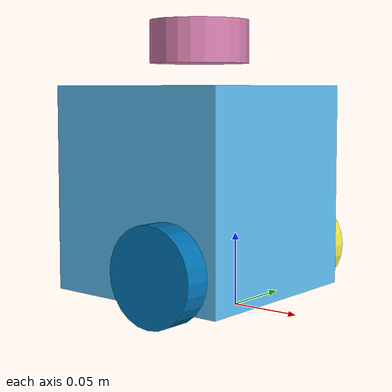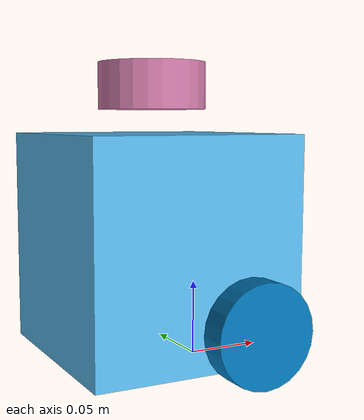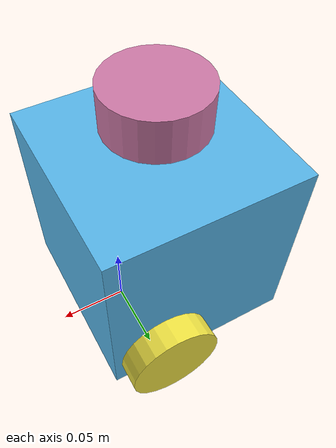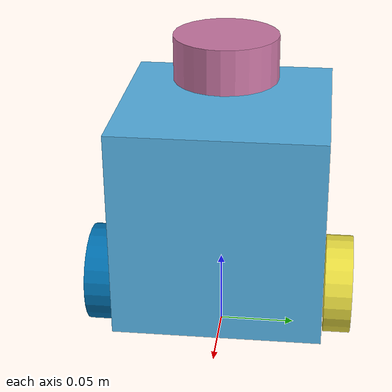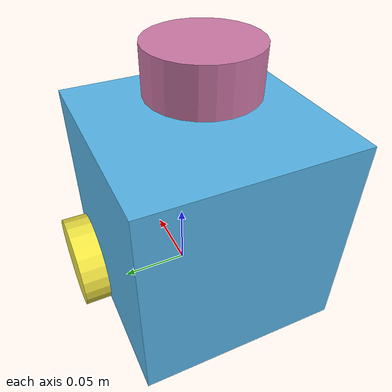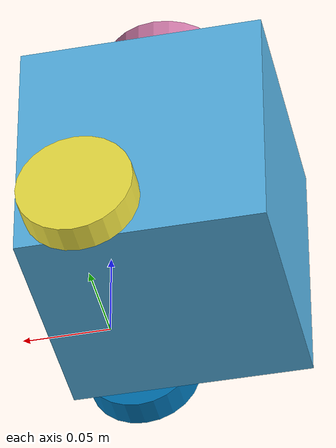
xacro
<?xml version="1.0"?>
<robot name="burger" xmlns:xacro="http://www.ros.org/wiki/xacro">
  <xacro:arg name="lidar_samples" default="360"/>
  <xacro:arg name="lidar_range" default="3.5"/>
  <xacro:arg name="lidar_min" default="0.12"/>
  <xacro:arg name="lidar_rate" default="5"/>

  <link name="base_footprint"/>
  <joint name="base_joint" type="fixed">
    <parent link="base_footprint"/>
    <child link="base_link"/>
    <origin xyz="0 0 0.010"/>
  </joint>
  <link name="base_link">
    <visual>
      <origin xyz="-0.032 0 0.070"/>
      <geometry><box size="0.140 0.140 0.143"/></geometry>
    </visual>
    <inertial>
      <origin xyz="-0.032 0 0.070"/>
      <mass value="0.825"/>
      <inertia ixx="2.2e-03" ixy="0" ixz="0" iyy="2.2e-03" iyz="0" izz="2.0e-03"/>
    </inertial>
  </link>

  <!-- Contact envelope = the 2D footprint (body and wheels), held above the floor so the
       ground is never a contact. -->
  <joint name="contact_shell_joint" type="fixed">
    <parent link="base_link"/>
    <child link="contact_shell"/>
    <origin xyz="-0.032 0 0.080"/>
  </joint>
  <link name="contact_shell">
    <collision name="contact_shell_collision">
      <geometry><box size="0.14 0.178 0.100"/></geometry>
    </collision>
    <inertial>
      <mass value="0.01"/>
      <inertia ixx="1e-5" ixy="0" ixz="0" iyy="1e-5" iyz="0" izz="1e-5"/>
    </inertial>
  </link>

  <xacro:macro name="wheel" params="side y">
    <joint name="wheel_${side}_joint" type="continuous">
      <parent link="base_link"/>
      <child link="wheel_${side}_link"/>
      <origin xyz="0 ${y} 0.023" rpy="-1.5708 0 0"/>
      <axis xyz="0 0 1"/>
    </joint>
    <link name="wheel_${side}_link">
      <visual><geometry><cylinder radius="0.033" length="0.018"/></geometry></visual>
      <collision><geometry><cylinder radius="0.033" length="0.018"/></geometry></collision>
      <inertial>
        <mass value="0.0285"/>
        <inertia ixx="1.1e-05" ixy="0" ixz="0" iyy="1.1e-05" iyz="0" izz="2.0e-05"/>
      </inertial>
    </link>
    <gazebo reference="wheel_${side}_link">
      <mu1>100000</mu1>
      <mu2>100000</mu2>
      <kp>500000</kp>
      <kd>10</kd>
      <minDepth>0.001</minDepth>
      <maxVel>0.1</maxVel>
      <fdir1>1 0 0</fdir1>
    </gazebo>
  </xacro:macro>
  <xacro:wheel side="left" y="0.080"/>
  <xacro:wheel side="right" y="-0.080"/>

  <joint name="caster_joint" type="fixed">
    <parent link="base_link"/>
    <child link="caster_link"/>
    <origin xyz="-0.081 0 -0.004"/>
  </joint>
  <link name="caster_link">
    <collision><geometry><sphere radius="0.005"/></geometry></collision>
    <inertial>
      <mass value="0.005"/>
      <inertia ixx="1e-7" ixy="0" ixz="0" iyy="1e-7" iyz="0" izz="1e-7"/>
    </inertial>
  </link>
  <gazebo reference="caster_link">
    <mu1>0</mu1>
    <mu2>0</mu2>
  </gazebo>

  <joint name="scan_joint" type="fixed">
    <parent link="base_link"/>
    <child link="base_scan"/>
    <origin xyz="-0.032 0 0.172"/>
  </joint>
  <link name="base_scan">
    <visual><geometry><cylinder radius="0.035" length="0.030"/></geometry></visual>
    <inertial>
      <mass value="0.114"/>
      <inertia ixx="1e-5" ixy="0" ixz="0" iyy="1e-5" iyz="0" izz="1e-5"/>
    </inertial>
  </link>

  <gazebo>
    <!-- turtlebot3_gazebo's burger values. -->
    <plugin name="diff_drive" filename="libgazebo_ros_diff_drive.so">
      <update_rate>30</update_rate>
      <left_joint>wheel_left_joint</left_joint>
      <right_joint>wheel_right_joint</right_joint>
      <wheel_separation>0.160</wheel_separation>
      <wheel_diameter>0.066</wheel_diameter>
      <max_wheel_torque>20</max_wheel_torque>
      <max_wheel_acceleration>1.0</max_wheel_acceleration>
      <command_topic>cmd_vel</command_topic>
      <publish_odom>true</publish_odom>
      <publish_odom_tf>true</publish_odom_tf>
      <publish_wheel_tf>false</publish_wheel_tf>
      <odometry_topic>odom</odometry_topic>
      <odometry_frame>odom</odometry_frame>
      <robot_base_frame>base_footprint</robot_base_frame>
    </plugin>
    <plugin name="joint_states" filename="libgazebo_ros_joint_state_publisher.so">
      <update_rate>30</update_rate>
      <joint_name>wheel_left_joint</joint_name>
      <joint_name>wheel_right_joint</joint_name>
    </plugin>
  </gazebo>

  <gazebo reference="base_footprint">
    <sensor name="contact_sensor" type="contact">
      <always_on>true</always_on>
      <update_rate>50</update_rate>
      <contact>
        <collision>base_footprint_fixed_joint_lump__contact_shell_collision_collision_1</collision>
      </contact>
      <!-- Publishes on /bumper_states, where evaluate_gazebo listens. -->
      <plugin name="gazebo_ros_bumper" filename="libgazebo_ros_bumper.so">
        <frame_name>base_footprint</frame_name>
      </plugin>
    </sensor>
  </gazebo>

  <gazebo reference="base_scan">
    <sensor name="lidar_sensor" type="ray">
      <always_on>true</always_on>
      <visualize>false</visualize>
      <update_rate>$(arg lidar_rate)</update_rate>
      <ray>
        <scan>
          <horizontal>
            <samples>$(arg lidar_samples)</samples>
            <resolution>1</resolution>
            <min_angle>${-pi}</min_angle>
            <max_angle>${pi}</max_angle>
          </horizontal>
        </scan>
        <range>
          <min>$(arg lidar_min)</min>
          <max>$(arg lidar_range)</max>
          <resolution>0.015</resolution>
        </range>
        <noise>
          <type>gaussian</type>
          <mean>0.0</mean>
          <stddev>0.01</stddev>
        </noise>
      </ray>
      <!-- Publishes on /gazebo_ros_lidar/out, the topic sim.launch.py remaps to /scan. -->
      <plugin name="gazebo_ros_lidar" filename="libgazebo_ros_ray_sensor.so">
        <output_type>sensor_msgs/LaserScan</output_type>
        <frame_name>base_scan</frame_name>
      </plugin>
    </sensor>
  </gazebo>
</robot>
